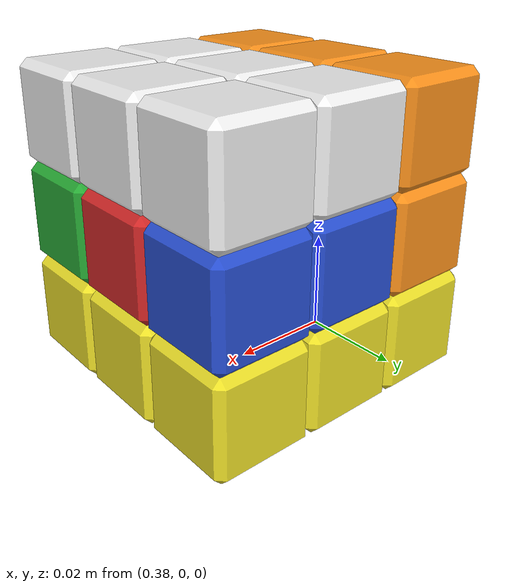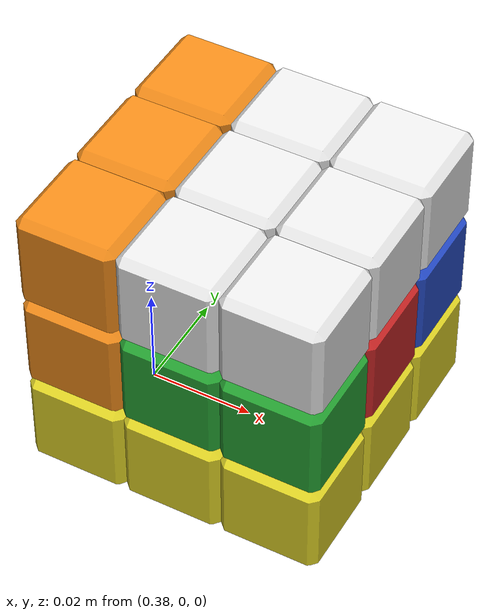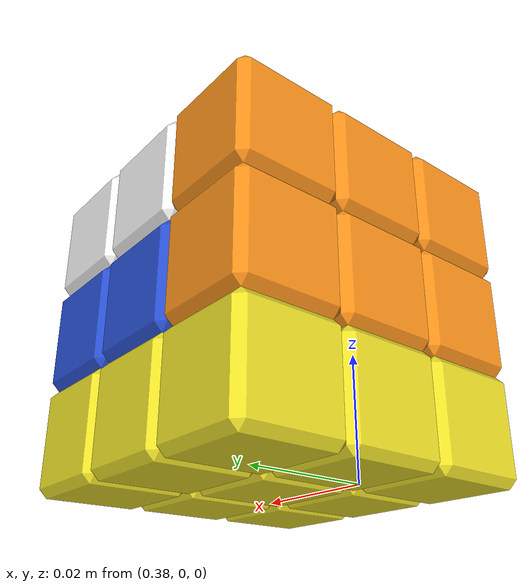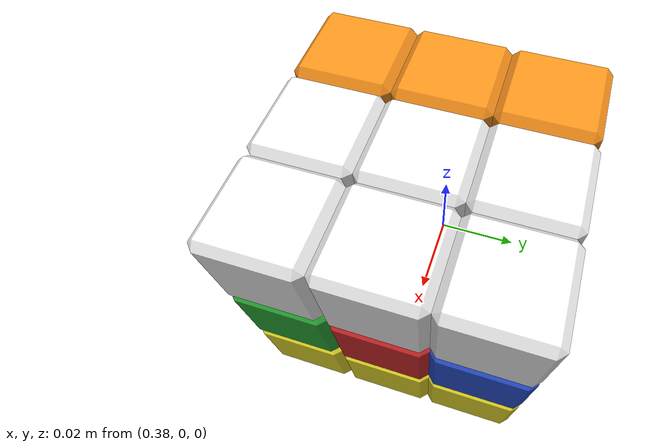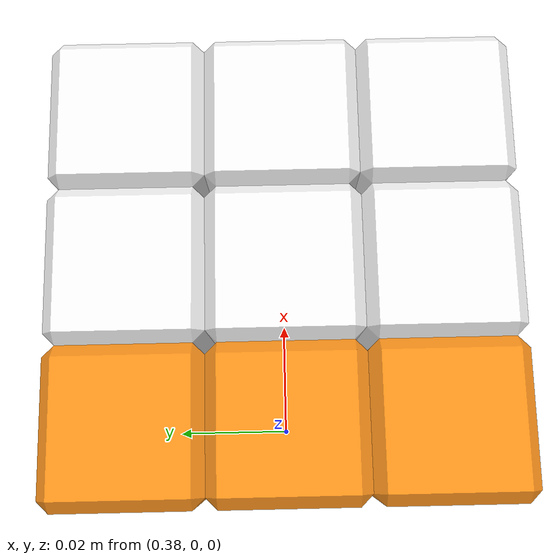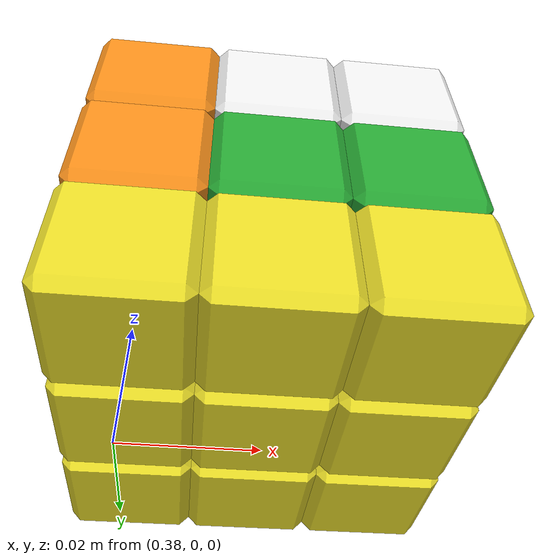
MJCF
<mujoco model="Cube 3x3x3">
  <compiler autolimits="true" angle="radian" texturedir="../assets"/>

  <option timestep="0.01" integrator="implicitfast"/> <!-- gravity="0 0 -9.81" -->

  <size memory="600K"/>

  <visual>
    <global azimuth="3.14159265359" elevation="-0.3490658504"/>
    <headlight ambient="0.3 0.3 0.3" diffuse="0.6 0.6 0.6" specular="0 0 0"/>
  </visual>

  <statistic meansize="0.0087" extent="0.1"/>

  <default>
    <geom mass="0.00253704"/>
    <motor ctrlrange="-0.05 0.05"/>
    <default class="cubelet">
      <joint type="ball" armature="0.0001" damping="0.0005" frictionloss="0.001"/>
      <geom type="mesh" condim="1" mesh="cubelet" euler="0 0 1.57079632679"/>
    </default>
    <default class="core">
      <geom type="sphere" contype="0" conaffinity="0" group="4" size="0.01"/>
    </default>
  </default>

  <asset>
    <texture type="skybox" builtin="gradient" width="512" height="512"/>
    <texture rgb1="0 0 0" gridsize="3 4" gridlayout=".....F......" file="white.png"/>
    <texture rgb1="0 0 0" gridsize="3 4" gridlayout=".....B......" file="yellow.png"/>
    <texture rgb1="0 0 0" gridsize="3 4" gridlayout=".....D......" file="red.png"/>
    <texture rgb1="0 0 0" gridsize="3 4" gridlayout=".....U......" file="orange.png"/>
    <texture rgb1="0 0 0" gridsize="3 4" gridlayout=".....R......" file="blue.png"/>
    <texture rgb1="0 0 0" gridsize="3 4" gridlayout=".....L......" file="green.png"/>
    <texture rgb1="0 0 0" gridsize="3 4" gridlayout=".....DF....." file="red_white.png"/>
    <texture rgb1="0 0 0" gridsize="3 4" gridlayout=".....UF....." file="orange_white.png"/>
    <texture rgb1="0 0 0" gridsize="3 4" gridlayout=".....RF....." file="blue_white.png"/>
    <texture rgb1="0 0 0" gridsize="3 4" gridlayout=".....LF....." file="green_white.png"/>
    <texture rgb1="0 0 0" gridsize="3 4" gridlayout=".....DB....." file="red_yellow.png"/>
    <texture rgb1="0 0 0" gridsize="3 4" gridlayout=".....UB....." file="orange_yellow.png"/>
    <texture rgb1="0 0 0" gridsize="3 4" gridlayout=".....RB....." file="blue_yellow.png"/>
    <texture rgb1="0 0 0" gridsize="3 4" gridlayout=".....LB....." file="green_yellow.png"/>
    <texture rgb1="0 0 0" gridsize="3 4" gridlayout=".....UD....." file="orange_red.png"/>
    <texture rgb1="0 0 0" gridsize="3 4" gridlayout=".....RD....." file="blue_red.png"/>
    <texture rgb1="0 0 0" gridsize="3 4" gridlayout=".....LD....." file="green_red.png"/>
    <texture rgb1="0 0 0" gridsize="3 4" gridlayout=".....RU....." file="blue_orange.png"/>
    <texture rgb1="0 0 0" gridsize="3 4" gridlayout=".....LU....." file="green_orange.png"/>
    <texture rgb1="0 0 0" gridsize="3 4" gridlayout=".....RDF...." file="blue_red_white.png"/>
    <texture rgb1="0 0 0" gridsize="3 4" gridlayout=".....LDF...." file="green_red_white.png"/>
    <texture rgb1="0 0 0" gridsize="3 4" gridlayout=".....RUF...." file="blue_orange_white.png"/>
    <texture rgb1="0 0 0" gridsize="3 4" gridlayout=".....LUF...." file="green_orange_white.png"/>
    <texture rgb1="0 0 0" gridsize="3 4" gridlayout=".....RDB...." file="blue_red_yellow.png"/>
    <texture rgb1="0 0 0" gridsize="3 4" gridlayout=".....LDB...." file="green_red_yellow.png"/>
    <texture rgb1="0 0 0" gridsize="3 4" gridlayout=".....RUB...." file="blue_orange_yellow.png"/>
    <texture rgb1="0 0 0" gridsize="3 4" gridlayout=".....LUB...." file="green_orange_yellow.png"/>
    <material name="white" texture="white"/>
    <material name="yellow" texture="yellow"/>
    <material name="red" texture="red"/>
    <material name="orange" texture="orange"/>
    <material name="blue" texture="blue"/>
    <material name="green" texture="green"/>
    <material name="red_white" texture="red_white"/>
    <material name="orange_white" texture="orange_white"/>
    <material name="blue_white" texture="blue_white"/>
    <material name="green_white" texture="green_white"/>
    <material name="red_yellow" texture="red_yellow"/>
    <material name="orange_yellow" texture="orange_yellow"/>
    <material name="blue_yellow" texture="blue_yellow"/>
    <material name="green_yellow" texture="green_yellow"/>
    <material name="orange_red" texture="orange_red"/>
    <material name="blue_red" texture="blue_red"/>
    <material name="green_red" texture="green_red"/>
    <material name="blue_orange" texture="blue_orange"/>
    <material name="green_orange" texture="green_orange"/>
    <material name="blue_red_white" texture="blue_red_white"/>
    <material name="green_red_white" texture="green_red_white"/>
    <material name="blue_orange_white" texture="blue_orange_white"/>
    <material name="green_orange_white" texture="green_orange_white"/>
    <material name="blue_red_yellow" texture="blue_red_yellow"/>
    <material name="green_red_yellow" texture="green_red_yellow"/>
    <material name="blue_orange_yellow" texture="blue_orange_yellow"/>
    <material name="green_orange_yellow" texture="green_orange_yellow"/>
    <mesh name="cubelet" scale="1e-3 1e-3 1e-3"
          vertex="8.075   9.5    -8.075  -8.075   9.5    -8.075   8.075   9.5     8.075
                 -8.075   9.5     8.075  -9.5     8.075  -8.075  -9.5    -8.075  -8.075
                 -9.5     8.075   8.075  -9.5    -8.075   8.075   8.075  -9.5    -8.075
                  8.075  -9.5     8.075  -8.075  -9.5    -8.075  -8.075  -9.5     8.075
                  9.5     8.075   8.075   9.5    -8.075   8.075   9.5     8.075  -8.075
                  9.5    -8.075  -8.075   8.075   8.075   9.5    -8.075   8.075   9.5
                  8.075  -8.075   9.5    -8.075  -8.075   9.5     8.075  -8.075  -9.5
                 -8.075  -8.075  -9.5     8.075   8.075  -9.5    -8.075   8.075  -9.5"/>
  </asset>

  <worldbody>
    <light pos="0 0 1"/>
    <body name="core" childclass="cubelet" pos="0.4 0 0.03">
      <freejoint name="cube_free"/>
      <geom class="core"/>
      <body name="pX">
        <joint name="pX" type="hinge" axis="1 0 0"/>
        <geom material="red" pos="0.019 0 0"/>
      </body>
      <body name="nX">
        <joint name="nX" type="hinge" axis="-1 0 0"/>
        <geom material="orange" pos="-0.019 0 0"/>
      </body>
      <body name="pY">
        <joint name="pY" type="hinge" axis="0 1 0"/>
        <geom material="blue" pos="0 0.019 0"/>
      </body>
      <body name="nY">
        <joint name="nY" type="hinge" axis="0 -1 0"/>
        <geom material="green" pos="0 -0.019 0"/>
      </body>
      <body name="pZ">
        <joint name="pZ" type="hinge" axis="0 0 1"/>
        <geom material="white" pos="0 0 0.019"/>
      </body>
      <body name="nZ">
        <joint name="nZ" type="hinge" axis="0 0 -1"/>
        <geom material="yellow" pos="0 0 -0.019"/>
      </body>
      <body name="pX_pY">
        <joint name="pX_pY"/>
        <geom material="blue_red" pos="0.019 0.019 0"/>
      </body>
      <body name="nY_pX">
        <joint name="nY_pX"/>
        <geom material="green_red" pos="0.019 -0.019 0"/>
      </body>
      <body name="pX_pZ">
        <joint name="pX_pZ"/>
        <geom material="red_white" pos="0.019 0 0.019"/>
      </body>
      <body name="nZ_pX">
        <joint name="nZ_pX"/>
        <geom material="red_yellow" pos="0.019 0 -0.019"/>
      </body>
      <body name="nX_pY">
        <joint name="nX_pY"/>
        <geom material="blue_orange" pos="-0.019 0.019 0"/>
      </body>
      <body name="nX_nY">
        <joint name="nX_nY"/>
        <geom material="green_orange" pos="-0.019 -0.019 0"/>
      </body>
      <body name="nX_pZ">
        <joint name="nX_pZ"/>
        <geom material="orange_white" pos="-0.019 0 0.019"/>
      </body>
      <body name="nX_nZ">
        <joint name="nX_nZ"/>
        <geom material="orange_yellow" pos="-0.019 0 -0.019"/>
      </body>
      <body name="pY_pZ">
        <joint name="pY_pZ"/>
        <geom material="blue_white" pos="0 0.019 0.019"/>
      </body>
      <body name="nZ_pY">
        <joint name="nZ_pY"/>
        <geom material="blue_yellow" pos="0 0.019 -0.019"/>
      </body>
      <body name="nY_pZ">
        <joint name="nY_pZ"/>
        <geom material="green_white" pos="0 -0.019 0.019"/>
      </body>
      <body name="nY_nZ">
        <joint name="nY_nZ"/>
        <geom material="green_yellow" pos="0 -0.019 -0.019"/>
      </body>
      <body name="pX_pY_pZ">
        <joint name="pX_pY_pZ"/>
        <geom material="blue_red_white" pos="0.019 0.019 0.019"/>
      </body>
      <body name="nZ_pX_pY">
        <joint name="nZ_pX_pY"/>
        <geom material="blue_red_yellow" pos="0.019 0.019 -0.019"/>
      </body>
      <body name="nY_pX_pZ">
        <joint name="nY_pX_pZ"/>
        <geom material="green_red_white" pos="0.019 -0.019 0.019"/>
      </body>
      <body name="nY_nZ_pX">
        <joint name="nY_nZ_pX"/>
        <geom material="green_red_yellow" pos="0.019 -0.019 -0.019"/>
      </body>
      <body name="nX_pY_pZ">
        <joint name="nX_pY_pZ"/>
        <geom material="blue_orange_white" pos="-0.019 0.019 0.019"/>
      </body>
      <body name="nX_nZ_pY">
        <joint name="nX_nZ_pY"/>
        <geom material="blue_orange_yellow" pos="-0.019 0.019 -0.019"/>
      </body>
      <body name="nX_nY_pZ">
        <joint name="nX_nY_pZ"/>
        <geom material="green_orange_white" pos="-0.019 -0.019 0.019"/>
      </body>
      <body name="nX_nY_nZ">
        <joint name="nX_nY_nZ"/>
        <geom material="green_orange_yellow" pos="-0.019 -0.019 -0.019"/>
      </body>
    </body>
  </worldbody>

  <actuator>
    <motor name="red" joint="pX"/>
    <motor name="orange" joint="nX"/>
    <motor name="blue" joint="pY"/>
    <motor name="green" joint="nY"/>
    <motor name="white" joint="pZ"/>
    <motor name="yellow" joint="nZ"/>
  </actuator>
</mujoco>
